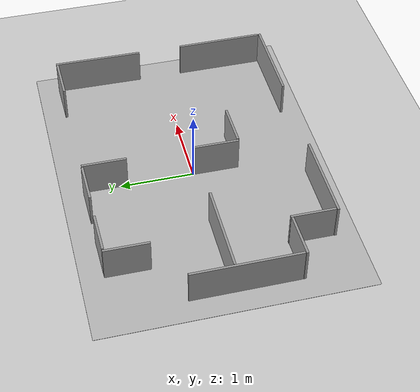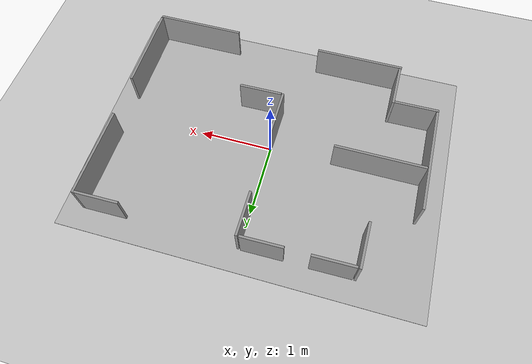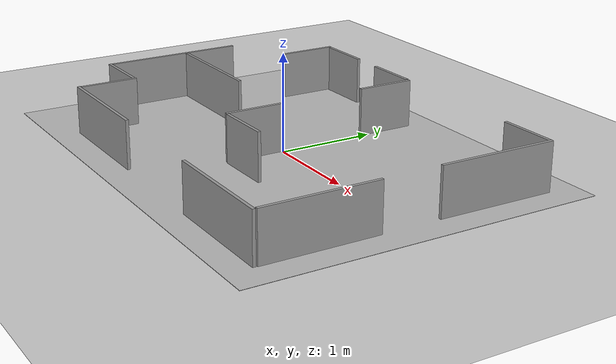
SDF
<sdf version="1.7">
 <world name="default">
  <scene><ambient>0.4 0.4 0.4 1</ambient><background>0.7 0.7 0.7 1</background><shadows>1</shadows></scene>
  <light name="sun" type="directional">
   <pose>0 0 10 0 -0 0</pose>
   <diffuse>0.8 0.8 0.8 1</diffuse>
   <specular>0.2 0.2 0.2 1</specular>
   <attenuation>
    <range>1000</range>
    <constant>0.9</constant>
    <linear>0.01</linear>
    <quadratic>0.001</quadratic>
   </attenuation>
   <direction>-0.5 0.1 -0.9</direction>
   <spot><inner_angle>0</inner_angle><outer_angle>0</outer_angle><falloff>0</falloff></spot>
  </light>
  <model name="ground_plane">
   <static>1</static>
   <link name="link">
    <collision name="collision">
     <geometry><plane><normal>0 0 1</normal><size>100 100</size></plane></geometry>
     <surface>
      <contact><collide_bitmask>65535</collide_bitmask></contact>
      <friction><ode><mu>100</mu><mu2>50</mu2></ode></friction>
     </surface>
    </collision>
    <visual name="visual">
     <cast_shadows>0</cast_shadows>
     <geometry><plane><normal>0 0 1</normal><size>100 100</size></plane></geometry>
     <material>
      <script><uri>file://media/materials/scripts/gazebo.material</uri><name>Gazebo/Grey</name></script>
     </material>
    </visual>
   </link>
  </model>
  <model name="courseabc">
   <static>1</static>
   <link name="course_link">
    <visual name="course_visual">
     <cast_shadows>0</cast_shadows>
     <geometry><plane><normal>0 0 1</normal><size>4.8 3.6</size></plane></geometry>
     <material>
      <script>
       <uri>model://courseabc/materials/scripts</uri>
       <uri>model://courseabc/materials/textures</uri>
       <name>courseabc</name>
      </script>
     </material>
    </visual>
   </link>
   <pose>0 0 0.01 0 -0 0</pose>
  </model>
  <physics type="ode">
   <real_time_update_rate>1000</real_time_update_rate>
   <max_step_size>0.001</max_step_size>
   <real_time_factor>1</real_time_factor>
   <ode>
    <solver>
     <type>quick</type>
     <iters>150</iters>
     <precon_iters>0</precon_iters>
     <sor>1.4</sor>
     <use_dynamic_moi_rescaling>1</use_dynamic_moi_rescaling>
    </solver>
    <constraints>
     <cfm>1e-05</cfm>
     <erp>0.2</erp>
     <contact_max_correcting_vel>2000</contact_max_correcting_vel>
     <contact_surface_layer>0.01</contact_surface_layer>
    </constraints>
   </ode>
  </physics>
  <gravity>0 0 -9.8</gravity>
  <magnetic_field>6e-06 2.3e-05 -4.2e-05</magnetic_field>
  <atmosphere type="adiabatic"/>
  <spherical_coordinates>
   <surface_model>EARTH_WGS84</surface_model>
   <latitude_deg>0</latitude_deg>
   <longitude_deg>0</longitude_deg>
   <elevation>0</elevation>
   <heading_deg>0</heading_deg>
  </spherical_coordinates>
  <model name="unit_box">
   <pose>-0.903256 -1.50236 0.251959 0 8e-06 0</pose>
   <link name="link">
    <inertial>
     <mass>1</mass>
     <inertia>
      <ixx>0.166667</ixx>
      <ixy>0</ixy>
      <ixz>0</ixz>
      <iyy>0.166667</iyy>
      <iyz>0</iyz>
      <izz>0.166667</izz>
     </inertia>
    </inertial>
    <collision name="collision">
     <geometry><box><size>1.21034 0.0321586 0.503928</size></box></geometry>
    </collision>
    <visual name="visual">
     <geometry><box><size>1.21034 0.0321586 0.503928</size></box></geometry>
     <material>
      <script><name>Gazebo/Grey</name><uri>file://media/materials/scripts/gazebo.material</uri></script>
     </material>
    </visual>
   </link>
  </model>
  <model name="unit_box_clone">
   <pose>-1.48436 -1.1817 0.251964 0 2e-06 -1.57677</pose>
   <link name="link">
    <inertial>
     <mass>1</mass>
     <inertia>
      <ixx>0.166667</ixx>
      <ixy>0</ixy>
      <ixz>0</ixz>
      <iyy>0.166667</iyy>
      <iyz>0</iyz>
      <izz>0.166667</izz>
     </inertia>
    </inertial>
    <collision name="collision">
     <geometry><box><size>0.599654 0.032159 0.503929</size></box></geometry>
    </collision>
    <visual name="visual">
     <geometry><box><size>0.599654 0.032159 0.503929</size></box></geometry>
     <material>
      <script><name>Gazebo/Grey</name><uri>file://media/materials/scripts/gazebo.material</uri></script>
     </material>
    </visual>
   </link>
  </model>
  <model name="unit_box_clone_clone">
   <pose>-1.79888 -0.905371 0.251965 1e-06 -0 0.01261</pose>
   <link name="link">
    <inertial>
     <mass>1</mass>
     <inertia>
      <ixx>0.166667</ixx>
      <ixy>0</ixy>
      <ixz>0</ixz>
      <iyy>0.166667</iyy>
      <iyz>0</iyz>
      <izz>0.166667</izz>
     </inertia>
    </inertial>
    <collision name="collision">
     <geometry><box><size>0.599654 0.032159 0.503929</size></box></geometry>
    </collision>
    <visual name="visual">
     <geometry><box><size>0.599654 0.032159 0.503929</size></box></geometry>
     <material>
      <script><name>Gazebo/Grey</name><uri>file://media/materials/scripts/gazebo.material</uri></script>
     </material>
    </visual>
   </link>
  </model>
  <model name="unit_box_clone_0">
   <pose>-2.08226 -0.158947 0.251957 0 -1e-05 -1.57031</pose>
   <link name="link">
    <inertial>
     <mass>1</mass>
     <inertia>
      <ixx>0.166667</ixx>
      <ixy>0</ixy>
      <ixz>0</ixz>
      <iyy>0.166667</iyy>
      <iyz>0</iyz>
      <izz>0.166667</izz>
     </inertia>
    </inertial>
    <collision name="collision"><geometry><box><size>1.45575 0.032159 0.503929</size></box></geometry></collision>
    <visual name="visual">
     <geometry><box><size>1.45575 0.032159 0.503929</size></box></geometry>
     <material>
      <script><name>Gazebo/Grey</name><uri>file://media/materials/scripts/gazebo.material</uri></script>
     </material>
    </visual>
   </link>
  </model>
  <model name="unit_box_clone_clone_0">
   <pose>-1.48548 1.19607 0.251964 0 0 -1.57685</pose>
   <link name="link">
    <inertial>
     <mass>1</mass>
     <inertia>
      <ixx>0.166667</ixx>
      <ixy>0</ixy>
      <ixz>0</ixz>
      <iyy>0.166667</iyy>
      <iyz>0</iyz>
      <izz>0.166667</izz>
     </inertia>
    </inertial>
    <collision name="collision">
     <geometry><box><size>0.599654 0.032159 0.503929</size></box></geometry>
    </collision>
    <visual name="visual">
     <geometry><box><size>0.599654 0.032159 0.503929</size></box></geometry>
     <material>
      <script><name>Gazebo/Grey</name><uri>file://media/materials/scripts/gazebo.material</uri></script>
     </material>
    </visual>
   </link>
  </model>
  <model name="unit_box_clone_1">
   <pose>-1.4567 -0.010326 0.251959 0 -8e-06 0</pose>
   <link name="link">
    <inertial>
     <mass>1</mass>
     <inertia>
      <ixx>0.166667</ixx>
      <ixy>0</ixy>
      <ixz>0</ixz>
      <iyy>0.166667</iyy>
      <iyz>0</iyz>
      <izz>0.166667</izz>
     </inertia>
    </inertial>
    <collision name="collision"><geometry><box><size>1.21034 0.032159 0.503929</size></box></geometry></collision>
    <visual name="visual">
     <geometry><box><size>1.21034 0.032159 0.503929</size></box></geometry>
     <material>
      <script><name>Gazebo/Grey</name><uri>file://media/materials/scripts/gazebo.material</uri></script>
     </material>
    </visual>
   </link>
  </model>
  <model name="unit_box_clone_clone_clone">
   <pose>-1.17631 1.48375 0.251965 0 -0 0.012575</pose>
   <link name="link">
    <inertial>
     <mass>1</mass>
     <inertia>
      <ixx>0.166667</ixx>
      <ixy>0</ixy>
      <ixz>0</ixz>
      <iyy>0.166667</iyy>
      <iyz>0</iyz>
      <izz>0.166667</izz>
     </inertia>
    </inertial>
    <collision name="collision">
     <geometry><box><size>0.554602 0.032159 0.503929</size></box></geometry>
    </collision>
    <visual name="visual">
     <geometry><box><size>0.554602 0.032159 0.503929</size></box></geometry>
     <material>
      <script><name>Gazebo/Grey</name><uri>file://media/materials/scripts/gazebo.material</uri></script>
     </material>
    </visual>
   </link>
  </model>
  <model name="unit_box_clone_clone_clone_clone">
   <pose>-0.300954 1.48669 0.251961 0 -4e-06 0.012582</pose>
   <link name="link">
    <inertial>
     <mass>1</mass>
     <inertia>
      <ixx>0.166667</ixx>
      <ixy>0</ixy>
      <ixz>0</ixz>
      <iyy>0.166667</iyy>
      <iyz>0</iyz>
      <izz>0.166667</izz>
     </inertia>
    </inertial>
    <collision name="collision">
     <geometry><box><size>0.554602 0.032159 0.503929</size></box></geometry>
    </collision>
    <visual name="visual">
     <geometry><box><size>0.554602 0.032159 0.503929</size></box></geometry>
     <material>
      <script><name>Gazebo/Grey</name><uri>file://media/materials/scripts/gazebo.material</uri></script>
     </material>
    </visual>
   </link>
  </model>
  <model name="unit_box_clone_clone_0_clone">
   <pose>0.006959 1.19813 0.251964 -0 -0 -1.57679</pose>
   <link name="link">
    <inertial>
     <mass>1</mass>
     <inertia>
      <ixx>0.166667</ixx>
      <ixy>0</ixy>
      <ixz>0</ixz>
      <iyy>0.166667</iyy>
      <iyz>0</iyz>
      <izz>0.166667</izz>
     </inertia>
    </inertial>
    <collision name="collision">
     <geometry><box><size>0.599654 0.032159 0.503929</size></box></geometry>
    </collision>
    <visual name="visual">
     <geometry><box><size>0.599654 0.032159 0.503929</size></box></geometry>
     <material>
      <script><name>Gazebo/Grey</name><uri>file://media/materials/scripts/gazebo.material</uri></script>
     </material>
    </visual>
   </link>
  </model>
  <model name="unit_box_clone_clone_0_clone_0">
   <pose>-0.003817 -0.322134 0.251965 7e-06 0 -1.57683</pose>
   <link name="link">
    <inertial>
     <mass>1</mass>
     <inertia>
      <ixx>0.166667</ixx>
      <ixy>0</ixy>
      <ixz>0</ixz>
      <iyy>0.166667</iyy>
      <iyz>0</iyz>
      <izz>0.166667</izz>
     </inertia>
    </inertial>
    <collision name="collision">
     <geometry><box><size>0.599654 0.032159 0.503929</size></box></geometry>
    </collision>
    <visual name="visual">
     <geometry><box><size>0.599654 0.032159 0.503929</size></box></geometry>
     <material>
      <script><name>Gazebo/Grey</name><uri>file://media/materials/scripts/gazebo.material</uri></script>
     </material>
    </visual>
   </link>
  </model>
  <model name="unit_box_clone_clone_clone_clone_clone">
   <pose>0.3121 -0.612213 0.251965 1e-06 -0 0.012563</pose>
   <link name="link">
    <inertial>
     <mass>1</mass>
     <inertia>
      <ixx>0.166667</ixx>
      <ixy>0</ixy>
      <ixz>0</ixz>
      <iyy>0.166667</iyy>
      <iyz>0</iyz>
      <izz>0.166667</izz>
     </inertia>
    </inertial>
    <collision name="collision">
     <geometry><box><size>0.585388 0.032159 0.503929</size></box></geometry>
    </collision>
    <visual name="visual">
     <geometry><box><size>0.585388 0.032159 0.503929</size></box></geometry>
     <material>
      <script><name>Gazebo/Grey</name><uri>file://media/materials/scripts/gazebo.material</uri></script>
     </material>
    </visual>
   </link>
  </model>
  <model name="unit_box_clone_2">
   <pose>1.50923 -1.51327 0.251959 0 -8e-06 0</pose>
   <link name="link">
    <inertial>
     <mass>1</mass>
     <inertia>
      <ixx>0.166667</ixx>
      <ixy>0</ixy>
      <ixz>0</ixz>
      <iyy>0.166667</iyy>
      <iyz>0</iyz>
      <izz>0.166667</izz>
     </inertia>
    </inertial>
    <collision name="collision"><geometry><box><size>1.21034 0.032159 0.503929</size></box></geometry></collision>
    <visual name="visual">
     <geometry><box><size>1.21034 0.032159 0.503929</size></box></geometry>
     <material>
      <script><name>Gazebo/Grey</name><uri>file://media/materials/scripts/gazebo.material</uri></script>
     </material>
    </visual>
   </link>
  </model>
  <model name="unit_box_clone_0_clone">
   <pose>2.10485 -0.897261 0.251965 0 0 -1.57039</pose>
   <link name="link">
    <inertial>
     <mass>1</mass>
     <inertia>
      <ixx>0.166667</ixx>
      <ixy>0</ixy>
      <ixz>0</ixz>
      <iyy>0.166667</iyy>
      <iyz>0</iyz>
      <izz>0.166667</izz>
     </inertia>
    </inertial>
    <collision name="collision"><geometry><box><size>1.17997 0.032159 0.503929</size></box></geometry></collision>
    <visual name="visual">
     <geometry><box><size>1.17997 0.032159 0.503929</size></box></geometry>
     <material>
      <script><name>Gazebo/Grey</name><uri>file://media/materials/scripts/gazebo.material</uri></script>
     </material>
    </visual>
   </link>
  </model>
  <model name="unit_box_clone_0_clone_0">
   <pose>2.11231 0.899614 0.251962 -0 5e-06 -1.58406</pose>
   <link name="link">
    <inertial>
     <mass>1</mass>
     <inertia>
      <ixx>0.166667</ixx>
      <ixy>0</ixy>
      <ixz>0</ixz>
      <iyy>0.166667</iyy>
      <iyz>0</iyz>
      <izz>0.166667</izz>
     </inertia>
    </inertial>
    <collision name="collision"><geometry><box><size>1.20684 0.032159 0.503929</size></box></geometry></collision>
    <visual name="visual">
     <geometry><box><size>1.20684 0.032159 0.503929</size></box></geometry>
     <material>
      <script><name>Gazebo/Grey</name><uri>file://media/materials/scripts/gazebo.material</uri></script>
     </material>
    </visual>
   </link>
  </model>
  <model name="unit_box_clone_clone_clone_clone_clone_clone">
   <pose>1.81096 1.48512 0.251964 1e-06 -0 0.012319</pose>
   <link name="link">
    <inertial>
     <mass>1</mass>
     <inertia>
      <ixx>0.166667</ixx>
      <ixy>0</ixy>
      <ixz>0</ixz>
      <iyy>0.166667</iyy>
      <iyz>0</iyz>
      <izz>0.166667</izz>
     </inertia>
    </inertial>
    <collision name="collision">
     <geometry><box><size>0.585387 0.032159 0.503929</size></box></geometry>
    </collision>
    <visual name="visual">
     <geometry><box><size>0.585387 0.032159 0.503929</size></box></geometry>
     <material>
      <script><name>Gazebo/Grey</name><uri>file://media/materials/scripts/gazebo.material</uri></script>
     </material>
    </visual>
   </link>
  </model>
 </world>
</sdf>
